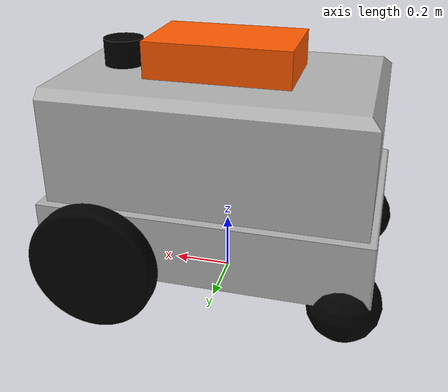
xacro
<?xml version="1.0" ?>
<robot name="donar_robot" xmlns:xacro="http://www.ros.org/wiki/xacro">
  <xacro:arg name="robot_name" default="donar_robot"/>
  <xacro:arg name="frame_prefix" default=""/>
  <xacro:property name="robot_name" value="$(arg robot_name)"/>
  <xacro:property name="frame_prefix" value="$(arg frame_prefix)"/>

<xacro:include filename="$(find donar_robot_description)/urdf/materials.xacro"/>

<!-- BASE FOOTPRINT -->
<link name="${frame_prefix}base_footprint"/>

<joint name="${frame_prefix}base_footprint_joint" type="fixed">
  <origin xyz="0 0 0.15" rpy="0 0 0"/>
  <parent link="${frame_prefix}base_footprint"/>
  <child link="${frame_prefix}base_link"/>
</joint>

<!-- BASE LINK -->
<link name="${frame_prefix}base_link">
  <inertial>
    <origin xyz="0.00019643943716737475 2.2407483791136845e-05 0.2893670205310124" rpy="0 0 0"/>
    <mass value="118.125"/>
    <inertia ixx="34.36262240625" iyy="58.34578078125" izz="63.99484734375" ixy="-0.000334125" iyz="0.00184528125" ixz="-0.0682374375"/>
  </inertial>
  <visual>
    <origin xyz="0 0 0" rpy="0 0 0"/>
    <geometry>
      <mesh filename="package://donar_robot_description/meshes/base_link.stl" scale="0.0015 0.0015 0.0015"/>
    </geometry>
    <material name="silver"/>
  </visual>
  <visual>
    <origin xyz="0 0 0.66" rpy="0 0 0"/>
    <geometry>
      <box size="0.48 0.3 0.12"/>
    </geometry>
    <material name="visibility_orange">
      <color rgba="1.0 0.35 0.0 1.0"/>
    </material>
  </visual>
  <collision>
    <origin xyz="0 0 0.18" rpy="0 0 0"/>
    <geometry>
      <box size="0.99 0.69 0.3"/>
    </geometry>
  </collision>
</link>

<!-- LIDAR -->
<link name="${frame_prefix}lidar_link">
  <inertial>
    <origin xyz="0 0 0" rpy="0 0 0"/>
    <mass value="0.84375"/>
    <inertia ixx="0.003796875" iyy="0.003796875" izz="0.003796875" ixy="0.0" iyz="0.0" ixz="0.0"/>
  </inertial>
  <visual>
    <origin xyz="0 0 0" rpy="0 0 0"/>
    <geometry>
      <cylinder radius="0.0675" length="0.09"/>
    </geometry>
    <material name="black"/>
  </visual>
  <collision>
    <origin xyz="0 0 0" rpy="0 0 0"/>
    <geometry>
      <cylinder radius="0.0675" length="0.09"/>
    </geometry>
  </collision>
</link>

<joint name="${frame_prefix}lidar_joint" type="fixed">
  <origin xyz="0.36 0 0.645" rpy="0 0 0"/>
  <parent link="${frame_prefix}base_link"/>
  <child link="${frame_prefix}lidar_link"/>
</joint>

<!-- RIGHT WHEEL -->
<link name="${frame_prefix}right_wheel_1">
  <inertial>
    <origin xyz="0.0 -0.0375 0.0" rpy="0 0 0"/>
    <mass value="6.75"/>
    <inertia ixx="0.12360346875" iyy="0.2371831875" izz="0.12360346875" ixy="0.0" iyz="0.0" ixz="0.0"/>
  </inertial>
  <visual>
    <origin xyz="-0.3315 0.39 -0.06" rpy="0 0 0"/>
    <geometry>
      <mesh filename="package://donar_robot_description/meshes/right_wheel_1.stl" scale="0.0015 0.0015 0.0015"/>
    </geometry>
    <material name="black"/>
  </visual>
  <collision>
    <origin xyz="0 -0.0375 0" rpy="1.57079632679 0 0"/>
    <geometry>
      <cylinder radius="0.21" length="0.075"/>
    </geometry>
  </collision>
</link>

<gazebo reference="${frame_prefix}right_wheel_1">
  <mu1>1.0</mu1>
  <mu2>1.0</mu2>
  <kp>1000000.0</kp>
  <kd>100.0</kd>
</gazebo>

<joint name="${frame_prefix}right_wheel_joint" type="continuous">
  <origin xyz="0.3315 -0.39 0.06" rpy="0 0 0"/>
  <parent link="${frame_prefix}base_link"/>
  <child link="${frame_prefix}right_wheel_1"/>
  <axis xyz="0.0 1.0 0.0"/>
</joint>

<!-- LEFT WHEEL -->
<link name="${frame_prefix}left_wheel_1">
  <inertial>
    <origin xyz="0.0 0.0375 0.0" rpy="0 0 0"/>
    <mass value="6.75"/>
    <inertia ixx="0.12360346875" iyy="0.2371831875" izz="0.12360346875" ixy="0.0" iyz="0.0" ixz="0.0"/>
  </inertial>
  <visual>
    <origin xyz="-0.3315 -0.39 -0.06" rpy="0 0 0"/>
    <geometry>
      <mesh filename="package://donar_robot_description/meshes/left_wheel_1.stl" scale="0.0015 0.0015 0.0015"/>
    </geometry>
    <material name="black"/>
  </visual>
  <collision>
    <origin xyz="0 0.0375 0" rpy="1.57079632679 0 0"/>
    <geometry>
      <cylinder radius="0.21" length="0.075"/>
    </geometry>
  </collision>
</link>

<gazebo reference="${frame_prefix}left_wheel_1">
  <mu1>1.0</mu1>
  <mu2>1.0</mu2>
  <kp>1000000.0</kp>
  <kd>100.0</kd>
</gazebo>

<joint name="${frame_prefix}left_wheel_joint" type="continuous">
  <origin xyz="0.3315 0.39 0.06" rpy="0 0 0"/>
  <parent link="${frame_prefix}base_link"/>
  <child link="${frame_prefix}left_wheel_1"/>
  <axis xyz="0.0 1.0 0.0"/>
</joint>

<!-- LEFT CASTER WHEEL -->
<link name="${frame_prefix}left_caster_wheel_1">
  <inertial>
    <origin xyz="0 0 -0.05836956521739113" rpy="0 0 0"/>
    <mass value="1.3786565201013452"/>
    <inertia ixx="0.00280209375" iyy="0.00280209375" izz="0.0023085" ixy="0" iyz="0" ixz="0"/>
  </inertial>
  <visual>
    <origin xyz="0 0 -0.015" rpy="0 0 0"/>
    <geometry>
      <sphere radius="0.12"/>
    </geometry>
    <material name="black"/>
  </visual>
  <collision>
    <origin xyz="0 0 -0.075" rpy="0 0 0"/>
    <geometry>
      <sphere radius="0.06"/>
    </geometry>
  </collision>
</link>

<!-- LEFT CASTER JOINT -->
<joint name="${frame_prefix}left_caster_joint" type="fixed">
  <origin xyz="-0.456 0.3 -0.015" rpy="0 0 0"/>
  <parent link="${frame_prefix}base_link"/>
  <child link="${frame_prefix}left_caster_wheel_1"/>
</joint>
<!-- Add Gazebo friction properties -->
<gazebo reference="${frame_prefix}left_caster_wheel_1">
  <mu1>0.0</mu1>
  <mu2>0.0</mu2>
  <kp>1000000.0</kp>
  <kd>100.0</kd>
</gazebo>

<!-- RIGHT CASTER WHEEL -->
<link name="${frame_prefix}right_caster_wheel_1">
  <inertial>
    <origin xyz="0 0 -0.05836956521739113" rpy="0 0 0"/>
    <mass value="1.3786565201013452"/>
    <inertia ixx="0.00280209375" iyy="0.00280209375" izz="0.0023085" ixy="0" iyz="0" ixz="0"/>
  </inertial>
  <visual>
    <origin xyz="0 0 -0.015" rpy="0 0 0"/>
    <geometry>
      <sphere radius="0.12"/>
    </geometry>
    <material name="black"/>
  </visual>
  <collision>
    <origin xyz="0 0 -0.075" rpy="0 0 0"/>
    <geometry>
      <sphere radius="0.06"/>
    </geometry>
  </collision>
</link>

<!-- RIGHT CASTER JOINT -->
<joint name="${frame_prefix}right_caster_joint" type="fixed">
  <origin xyz="-0.456 -0.3 -0.015" rpy="0 0 0"/>
  <parent link="${frame_prefix}base_link"/>
  <child link="${frame_prefix}right_caster_wheel_1"/>
</joint>

<gazebo reference="${frame_prefix}right_caster_wheel_1">
  <mu1>0.0</mu1>
  <mu2>0.0</mu2>
  <kp>1000000.0</kp>
  <kd>100.0</kd>
</gazebo>

<gazebo reference="${frame_prefix}lidar_link">
  <!-- 3D GPU lidar for visible rays in Gazebo and a bridged point cloud topic
       that can be converted to /scan for SLAM. -->
  <sensor type="gpu_lidar" name="front_lidar">
    <pose>0 0 0 0 0 0</pose>
    <topic>/${robot_name}/lidar</topic>
    <always_on>true</always_on>
    <update_rate>10</update_rate>
    <visualize>true</visualize>
    <lidar>
      <scan>
        <horizontal>
          <samples>1024</samples>
          <resolution>1</resolution>
          <min_angle>-3.14159</min_angle>
          <max_angle>3.14159</max_angle>
        </horizontal>
        <vertical>
          <samples>16</samples>
          <resolution>1</resolution>
          <min_angle>-0.261799</min_angle>
          <max_angle>0.261799</max_angle>
        </vertical>
      </scan>
      <range>
        <min>0.12</min>
        <max>10.0</max>
        <resolution>0.01</resolution>
      </range>
      <noise>
        <type>gaussian</type>
        <mean>0.0</mean>
        <stddev>0.01</stddev>
      </noise>
    </lidar>
  </sensor>
</gazebo>

<gazebo>
  <plugin
    filename="libignition-gazebo6-diff-drive-system.so"
    name="ignition::gazebo::systems::DiffDrive">

    <left_joint>${frame_prefix}left_wheel_joint</left_joint>
    <right_joint>${frame_prefix}right_wheel_joint</right_joint>

    <wheel_separation>0.78</wheel_separation>
    <wheel_radius>0.21</wheel_radius>
    <max_linear_acceleration>3.0</max_linear_acceleration>
    <min_linear_acceleration>-3.0</min_linear_acceleration>
    <max_angular_acceleration>12.0</max_angular_acceleration>
    <min_angular_acceleration>-12.0</min_angular_acceleration>
    <max_linear_velocity>2.0</max_linear_velocity>
    <min_linear_velocity>-2.0</min_linear_velocity>
    <max_angular_velocity>6.0</max_angular_velocity>
    <min_angular_velocity>-6.0</min_angular_velocity>

    <topic>/${robot_name}/cmd_vel</topic>
    <odom_topic>/${robot_name}/odometry</odom_topic>
    <tf_topic>/tf</tf_topic>
    <frame_id>${frame_prefix}odom</frame_id>
    <child_frame_id>${frame_prefix}base_footprint</child_frame_id>
    <odom_publish_frequency>10</odom_publish_frequency>

  </plugin>
</gazebo>
</robot>

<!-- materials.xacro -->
<robot name="donar_robot" xmlns:xacro="http://www.ros.org/wiki/xacro" >

  <material name="silver">
    <color rgba="0.700 0.700 0.700 1.000"/>
  </material>

  <material name="black">
    <color rgba="0.0 0.0 0.0 1.0"/>
  </material>

  <material name="grey">
    <color rgba="0.5 0.5 0.5 1.0"/>
  </material>

</robot>
